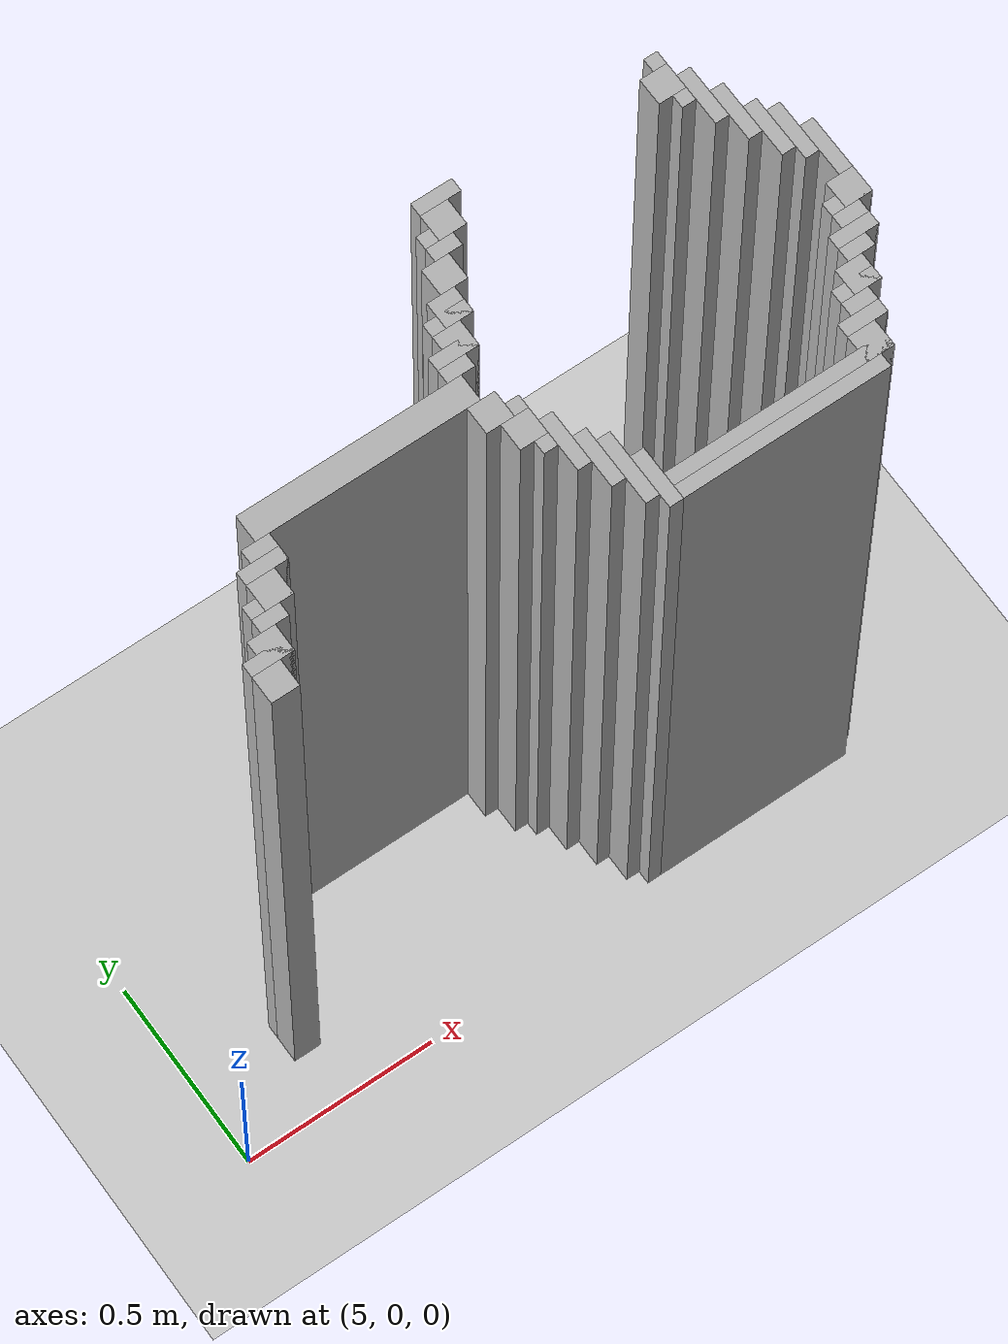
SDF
<sdf version="1.6">
 <world name="slam_world">
  <model name="ground_plane">
   <static>true</static>
   <link name="link">
    <collision name="collision">
     <geometry><plane><normal>0 0 1</normal><size>100 100</size></plane></geometry>
    </collision>
    <visual name="visual">
     <geometry><plane><normal>0 0 1</normal><size>100 100</size></plane></geometry>
     <material>
      <ambient>0.8 0.8 0.8 1</ambient>
      <diffuse>0.8 0.8 0.8 1</diffuse>
      <specular>0.8 0.8 0.8 1</specular>
     </material>
    </visual>
   </link>
  </model>
  <model name="wall_5440">
   <static>true</static>
   <pose>6.142691415313225 0.8874709976798143 1.0 0 0 0</pose>
   <link name="link">
    <collision name="collision">
     <geometry><box><size>0.10440835266821345 0.03480278422273782 2.0</size></box></geometry>
    </collision>
    <visual name="visual">
     <geometry><box><size>0.10440835266821345 0.03480278422273782 2.0</size></box></geometry>
     <material><ambient>0.5 0.5 0.5 1</ambient><diffuse>0.7 0.7 0.7 1</diffuse></material>
    </visual>
   </link>
  </model>
  <model name="wall_5441">
   <static>true</static>
   <pose>6.69953596287703 0.8352668213457076 1.0 0 0 0</pose>
   <link name="link">
    <collision name="collision">
     <geometry><box><size>0.03480278422273782 0.13921113689095127 2.0</size></box></geometry>
    </collision>
    <visual name="visual">
     <geometry><box><size>0.03480278422273782 0.13921113689095127 2.0</size></box></geometry>
     <material><ambient>0.5 0.5 0.5 1</ambient><diffuse>0.7 0.7 0.7 1</diffuse></material>
    </visual>
   </link>
  </model>
  <model name="wall_5450">
   <static>true</static>
   <pose>6.125290023201856 0.8352668213457076 1.0 0 0 0</pose>
   <link name="link">
    <collision name="collision">
     <geometry><box><size>0.06960556844547564 0.06960556844547564 2.0</size></box></geometry>
    </collision>
    <visual name="visual">
     <geometry><box><size>0.06960556844547564 0.06960556844547564 2.0</size></box></geometry>
     <material><ambient>0.5 0.5 0.5 1</ambient><diffuse>0.7 0.7 0.7 1</diffuse></material>
    </visual>
   </link>
  </model>
  <model name="wall_5451">
   <static>true</static>
   <pose>6.682134570765661 0.8352668213457076 1.0 0 0 0</pose>
   <link name="link">
    <collision name="collision">
     <geometry><box><size>0.06960556844547564 0.06960556844547564 2.0</size></box></geometry>
    </collision>
    <visual name="visual">
     <geometry><box><size>0.06960556844547564 0.06960556844547564 2.0</size></box></geometry>
     <material><ambient>0.5 0.5 0.5 1</ambient><diffuse>0.7 0.7 0.7 1</diffuse></material>
    </visual>
   </link>
  </model>
  <model name="wall_5460">
   <static>true</static>
   <pose>6.107888631090487 0.8178654292343387 1.0 0 0 0</pose>
   <link name="link">
    <collision name="collision">
     <geometry><box><size>0.10440835266821345 0.03480278422273782 2.0</size></box></geometry>
    </collision>
    <visual name="visual">
     <geometry><box><size>0.10440835266821345 0.03480278422273782 2.0</size></box></geometry>
     <material><ambient>0.5 0.5 0.5 1</ambient><diffuse>0.7 0.7 0.7 1</diffuse></material>
    </visual>
   </link>
  </model>
  <model name="wall_5461">
   <static>true</static>
   <pose>6.734338747099768 0.765661252900232 1.0 0 0 0</pose>
   <link name="link">
    <collision name="collision">
     <geometry><box><size>0.03480278422273782 0.13921113689095127 2.0</size></box></geometry>
    </collision>
    <visual name="visual">
     <geometry><box><size>0.03480278422273782 0.13921113689095127 2.0</size></box></geometry>
     <material><ambient>0.5 0.5 0.5 1</ambient><diffuse>0.7 0.7 0.7 1</diffuse></material>
    </visual>
   </link>
  </model>
  <model name="wall_5469">
   <static>true</static>
   <pose>6.090487238979118 0.7830626450116009 1.0 0 0 0</pose>
   <link name="link">
    <collision name="collision">
     <geometry><box><size>0.06960556844547564 0.03480278422273782 2.0</size></box></geometry>
    </collision>
    <visual name="visual">
     <geometry><box><size>0.06960556844547564 0.03480278422273782 2.0</size></box></geometry>
     <material><ambient>0.5 0.5 0.5 1</ambient><diffuse>0.7 0.7 0.7 1</diffuse></material>
    </visual>
   </link>
  </model>
  <model name="wall_5476">
   <static>true</static>
   <pose>6.05568445475638 0.7308584686774942 1.0 0 0 0</pose>
   <link name="link">
    <collision name="collision">
     <geometry><box><size>0.06960556844547564 0.06960556844547564 2.0</size></box></geometry>
    </collision>
    <visual name="visual">
     <geometry><box><size>0.06960556844547564 0.06960556844547564 2.0</size></box></geometry>
     <material><ambient>0.5 0.5 0.5 1</ambient><diffuse>0.7 0.7 0.7 1</diffuse></material>
    </visual>
   </link>
  </model>
  <model name="wall_5477">
   <static>true</static>
   <pose>6.769141531322505 0.6960556844547563 1.0 0 0 0</pose>
   <link name="link">
    <collision name="collision">
     <geometry><box><size>0.03480278422273782 0.13921113689095127 2.0</size></box></geometry>
    </collision>
    <visual name="visual">
     <geometry><box><size>0.03480278422273782 0.13921113689095127 2.0</size></box></geometry>
     <material><ambient>0.5 0.5 0.5 1</ambient><diffuse>0.7 0.7 0.7 1</diffuse></material>
    </visual>
   </link>
  </model>
  <model name="wall_5486">
   <static>true</static>
   <pose>6.020881670533642 0.6612529002320185 1.0 0 0 0</pose>
   <link name="link">
    <collision name="collision">
     <geometry><box><size>0.06960556844547564 0.06960556844547564 2.0</size></box></geometry>
    </collision>
    <visual name="visual">
     <geometry><box><size>0.06960556844547564 0.06960556844547564 2.0</size></box></geometry>
     <material><ambient>0.5 0.5 0.5 1</ambient><diffuse>0.7 0.7 0.7 1</diffuse></material>
    </visual>
   </link>
  </model>
  <model name="wall_5487">
   <static>true</static>
   <pose>6.803944315545244 0.6264501160092807 1.0 0 0 0</pose>
   <link name="link">
    <collision name="collision">
     <geometry><box><size>0.03480278422273782 0.13921113689095127 2.0</size></box></geometry>
    </collision>
    <visual name="visual">
     <geometry><box><size>0.03480278422273782 0.13921113689095127 2.0</size></box></geometry>
     <material><ambient>0.5 0.5 0.5 1</ambient><diffuse>0.7 0.7 0.7 1</diffuse></material>
    </visual>
   </link>
  </model>
  <model name="wall_5496">
   <static>true</static>
   <pose>6.003480278422273 0.6438515081206496 1.0 0 0 0</pose>
   <link name="link">
    <collision name="collision">
     <geometry><box><size>0.10440835266821345 0.03480278422273782 2.0</size></box></geometry>
    </collision>
    <visual name="visual">
     <geometry><box><size>0.10440835266821345 0.03480278422273782 2.0</size></box></geometry>
     <material><ambient>0.5 0.5 0.5 1</ambient><diffuse>0.7 0.7 0.7 1</diffuse></material>
    </visual>
   </link>
  </model>
  <model name="wall_5497">
   <static>true</static>
   <pose>6.838747099767981 0.5916473317865429 1.0 0 0 0</pose>
   <link name="link">
    <collision name="collision">
     <geometry><box><size>0.03480278422273782 0.13921113689095127 2.0</size></box></geometry>
    </collision>
    <visual name="visual">
     <geometry><box><size>0.03480278422273782 0.13921113689095127 2.0</size></box></geometry>
     <material><ambient>0.5 0.5 0.5 1</ambient><diffuse>0.7 0.7 0.7 1</diffuse></material>
    </visual>
   </link>
  </model>
  <model name="wall_5505">
   <static>true</static>
   <pose>5.986078886310905 0.5916473317865429 1.0 0 0 0</pose>
   <link name="link">
    <collision name="collision">
     <geometry><box><size>0.06960556844547564 0.06960556844547564 2.0</size></box></geometry>
    </collision>
    <visual name="visual">
     <geometry><box><size>0.06960556844547564 0.06960556844547564 2.0</size></box></geometry>
     <material><ambient>0.5 0.5 0.5 1</ambient><diffuse>0.7 0.7 0.7 1</diffuse></material>
    </visual>
   </link>
  </model>
  <model name="wall_5512">
   <static>true</static>
   <pose>5.968677494199536 0.574245939675174 1.0 0 0 0</pose>
   <link name="link">
    <collision name="collision">
     <geometry><box><size>0.10440835266821345 0.03480278422273782 2.0</size></box></geometry>
    </collision>
    <visual name="visual">
     <geometry><box><size>0.10440835266821345 0.03480278422273782 2.0</size></box></geometry>
     <material><ambient>0.5 0.5 0.5 1</ambient><diffuse>0.7 0.7 0.7 1</diffuse></material>
    </visual>
   </link>
  </model>
  <model name="wall_5513">
   <static>true</static>
   <pose>6.8735498839907185 0.4872389791183295 1.0 0 0 0</pose>
   <link name="link">
    <collision name="collision">
     <geometry><box><size>0.03480278422273782 0.2088167053364269 2.0</size></box></geometry>
    </collision>
    <visual name="visual">
     <geometry><box><size>0.03480278422273782 0.2088167053364269 2.0</size></box></geometry>
     <material><ambient>0.5 0.5 0.5 1</ambient><diffuse>0.7 0.7 0.7 1</diffuse></material>
    </visual>
   </link>
  </model>
  <model name="wall_5521">
   <static>true</static>
   <pose>5.951276102088166 0.5394431554524362 1.0 0 0 0</pose>
   <link name="link">
    <collision name="collision">
     <geometry><box><size>0.06960556844547564 0.03480278422273782 2.0</size></box></geometry>
    </collision>
    <visual name="visual">
     <geometry><box><size>0.06960556844547564 0.03480278422273782 2.0</size></box></geometry>
     <material><ambient>0.5 0.5 0.5 1</ambient><diffuse>0.7 0.7 0.7 1</diffuse></material>
    </visual>
   </link>
  </model>
  <model name="wall_5529">
   <static>true</static>
   <pose>5.672853828306264 0.4872389791183295 1.0 0 0 0</pose>
   <link name="link">
    <collision name="collision">
     <geometry><box><size>0.5568445475638051 0.06960556844547564 2.0</size></box></geometry>
    </collision>
    <visual name="visual">
     <geometry><box><size>0.5568445475638051 0.06960556844547564 2.0</size></box></geometry>
     <material><ambient>0.5 0.5 0.5 1</ambient><diffuse>0.7 0.7 0.7 1</diffuse></material>
    </visual>
   </link>
  </model>
  <model name="wall_5543">
   <static>true</static>
   <pose>5.3944315545243615 0.4176334106728538 1.0 0 0 0</pose>
   <link name="link">
    <collision name="collision">
     <geometry><box><size>0.06960556844547564 0.06960556844547564 2.0</size></box></geometry>
    </collision>
    <visual name="visual">
     <geometry><box><size>0.06960556844547564 0.06960556844547564 2.0</size></box></geometry>
     <material><ambient>0.5 0.5 0.5 1</ambient><diffuse>0.7 0.7 0.7 1</diffuse></material>
    </visual>
   </link>
  </model>
  <model name="wall_5544">
   <static>true</static>
   <pose>5.951276102088166 0.4176334106728538 1.0 0 0 0</pose>
   <link name="link">
    <collision name="collision">
     <geometry><box><size>0.06960556844547564 0.06960556844547564 2.0</size></box></geometry>
    </collision>
    <visual name="visual">
     <geometry><box><size>0.06960556844547564 0.06960556844547564 2.0</size></box></geometry>
     <material><ambient>0.5 0.5 0.5 1</ambient><diffuse>0.7 0.7 0.7 1</diffuse></material>
    </visual>
   </link>
  </model>
  <model name="wall_5545">
   <static>true</static>
   <pose>6.85614849187935 0.4176334106728538 1.0 0 0 0</pose>
   <link name="link">
    <collision name="collision">
     <geometry><box><size>0.06960556844547564 0.06960556844547564 2.0</size></box></geometry>
    </collision>
    <visual name="visual">
     <geometry><box><size>0.06960556844547564 0.06960556844547564 2.0</size></box></geometry>
     <material><ambient>0.5 0.5 0.5 1</ambient><diffuse>0.7 0.7 0.7 1</diffuse></material>
    </visual>
   </link>
  </model>
  <model name="wall_5563">
   <static>true</static>
   <pose>5.377030162412993 0.4002320185614849 1.0 0 0 0</pose>
   <link name="link">
    <collision name="collision">
     <geometry><box><size>0.10440835266821345 0.03480278422273782 2.0</size></box></geometry>
    </collision>
    <visual name="visual">
     <geometry><box><size>0.10440835266821345 0.03480278422273782 2.0</size></box></geometry>
     <material><ambient>0.5 0.5 0.5 1</ambient><diffuse>0.7 0.7 0.7 1</diffuse></material>
    </visual>
   </link>
  </model>
  <model name="wall_5564">
   <static>true</static>
   <pose>6.003480278422273 0.34802784222737815 1.0 0 0 0</pose>
   <link name="link">
    <collision name="collision">
     <geometry><box><size>0.03480278422273782 0.13921113689095127 2.0</size></box></geometry>
    </collision>
    <visual name="visual">
     <geometry><box><size>0.03480278422273782 0.13921113689095127 2.0</size></box></geometry>
     <material><ambient>0.5 0.5 0.5 1</ambient><diffuse>0.7 0.7 0.7 1</diffuse></material>
    </visual>
   </link>
  </model>
  <model name="wall_5565">
   <static>true</static>
   <pose>6.838747099767981 0.4002320185614849 1.0 0 0 0</pose>
   <link name="link">
    <collision name="collision">
     <geometry><box><size>0.10440835266821345 0.03480278422273782 2.0</size></box></geometry>
    </collision>
    <visual name="visual">
     <geometry><box><size>0.10440835266821345 0.03480278422273782 2.0</size></box></geometry>
     <material><ambient>0.5 0.5 0.5 1</ambient><diffuse>0.7 0.7 0.7 1</diffuse></material>
    </visual>
   </link>
  </model>
  <model name="wall_5583">
   <static>true</static>
   <pose>5.359628770301624 0.34802784222737815 1.0 0 0 0</pose>
   <link name="link">
    <collision name="collision">
     <geometry><box><size>0.06960556844547564 0.06960556844547564 2.0</size></box></geometry>
    </collision>
    <visual name="visual">
     <geometry><box><size>0.06960556844547564 0.06960556844547564 2.0</size></box></geometry>
     <material><ambient>0.5 0.5 0.5 1</ambient><diffuse>0.7 0.7 0.7 1</diffuse></material>
    </visual>
   </link>
  </model>
  <model name="wall_5584">
   <static>true</static>
   <pose>5.986078886310905 0.34802784222737815 1.0 0 0 0</pose>
   <link name="link">
    <collision name="collision">
     <geometry><box><size>0.06960556844547564 0.06960556844547564 2.0</size></box></geometry>
    </collision>
    <visual name="visual">
     <geometry><box><size>0.06960556844547564 0.06960556844547564 2.0</size></box></geometry>
     <material><ambient>0.5 0.5 0.5 1</ambient><diffuse>0.7 0.7 0.7 1</diffuse></material>
    </visual>
   </link>
  </model>
  <model name="wall_5585">
   <static>true</static>
   <pose>6.821345707656612 0.34802784222737815 1.0 0 0 0</pose>
   <link name="link">
    <collision name="collision">
     <geometry><box><size>0.06960556844547564 0.06960556844547564 2.0</size></box></geometry>
    </collision>
    <visual name="visual">
     <geometry><box><size>0.06960556844547564 0.06960556844547564 2.0</size></box></geometry>
     <material><ambient>0.5 0.5 0.5 1</ambient><diffuse>0.7 0.7 0.7 1</diffuse></material>
    </visual>
   </link>
  </model>
  <model name="wall_5603">
   <static>true</static>
   <pose>5.342227378190255 0.3306264501160093 1.0 0 0 0</pose>
   <link name="link">
    <collision name="collision">
     <geometry><box><size>0.10440835266821345 0.03480278422273782 2.0</size></box></geometry>
    </collision>
    <visual name="visual">
     <geometry><box><size>0.10440835266821345 0.03480278422273782 2.0</size></box></geometry>
     <material><ambient>0.5 0.5 0.5 1</ambient><diffuse>0.7 0.7 0.7 1</diffuse></material>
    </visual>
   </link>
  </model>
  <model name="wall_5604">
   <static>true</static>
   <pose>6.038283062645012 0.27842227378190254 1.0 0 0 0</pose>
   <link name="link">
    <collision name="collision">
     <geometry><box><size>0.03480278422273782 0.13921113689095127 2.0</size></box></geometry>
    </collision>
    <visual name="visual">
     <geometry><box><size>0.03480278422273782 0.13921113689095127 2.0</size></box></geometry>
     <material><ambient>0.5 0.5 0.5 1</ambient><diffuse>0.7 0.7 0.7 1</diffuse></material>
    </visual>
   </link>
  </model>
  <model name="wall_5605">
   <static>true</static>
   <pose>6.803944315545244 0.3306264501160093 1.0 0 0 0</pose>
   <link name="link">
    <collision name="collision">
     <geometry><box><size>0.10440835266821345 0.03480278422273782 2.0</size></box></geometry>
    </collision>
    <visual name="visual">
     <geometry><box><size>0.10440835266821345 0.03480278422273782 2.0</size></box></geometry>
     <material><ambient>0.5 0.5 0.5 1</ambient><diffuse>0.7 0.7 0.7 1</diffuse></material>
    </visual>
   </link>
  </model>
  <model name="wall_5619">
   <static>true</static>
   <pose>5.324825986078886 0.29582366589327147 1.0 0 0 0</pose>
   <link name="link">
    <collision name="collision">
     <geometry><box><size>0.06960556844547564 0.03480278422273782 2.0</size></box></geometry>
    </collision>
    <visual name="visual">
     <geometry><box><size>0.06960556844547564 0.03480278422273782 2.0</size></box></geometry>
     <material><ambient>0.5 0.5 0.5 1</ambient><diffuse>0.7 0.7 0.7 1</diffuse></material>
    </visual>
   </link>
  </model>
  <model name="wall_5620">
   <static>true</static>
   <pose>6.786542923433874 0.29582366589327147 1.0 0 0 0</pose>
   <link name="link">
    <collision name="collision">
     <geometry><box><size>0.06960556844547564 0.03480278422273782 2.0</size></box></geometry>
    </collision>
    <visual name="visual">
     <geometry><box><size>0.06960556844547564 0.03480278422273782 2.0</size></box></geometry>
     <material><ambient>0.5 0.5 0.5 1</ambient><diffuse>0.7 0.7 0.7 1</diffuse></material>
    </visual>
   </link>
  </model>
  <model name="wall_5633">
   <static>true</static>
   <pose>5.290023201856148 0.24361948955916474 1.0 0 0 0</pose>
   <link name="link">
    <collision name="collision">
     <geometry><box><size>0.06960556844547564 0.06960556844547564 2.0</size></box></geometry>
    </collision>
    <visual name="visual">
     <geometry><box><size>0.06960556844547564 0.06960556844547564 2.0</size></box></geometry>
     <material><ambient>0.5 0.5 0.5 1</ambient><diffuse>0.7 0.7 0.7 1</diffuse></material>
    </visual>
   </link>
  </model>
  <model name="wall_5634">
   <static>true</static>
   <pose>6.073085846867749 0.2088167053364269 1.0 0 0 0</pose>
   <link name="link">
    <collision name="collision">
     <geometry><box><size>0.03480278422273782 0.13921113689095127 2.0</size></box></geometry>
    </collision>
    <visual name="visual">
     <geometry><box><size>0.03480278422273782 0.13921113689095127 2.0</size></box></geometry>
     <material><ambient>0.5 0.5 0.5 1</ambient><diffuse>0.7 0.7 0.7 1</diffuse></material>
    </visual>
   </link>
  </model>
  <model name="wall_5635">
   <static>true</static>
   <pose>6.751740139211137 0.24361948955916474 1.0 0 0 0</pose>
   <link name="link">
    <collision name="collision">
     <geometry><box><size>0.06960556844547564 0.06960556844547564 2.0</size></box></geometry>
    </collision>
    <visual name="visual">
     <geometry><box><size>0.06960556844547564 0.06960556844547564 2.0</size></box></geometry>
     <material><ambient>0.5 0.5 0.5 1</ambient><diffuse>0.7 0.7 0.7 1</diffuse></material>
    </visual>
   </link>
  </model>
  <model name="wall_5653">
   <static>true</static>
   <pose>5.27262180974478 0.2262180974477958 1.0 0 0 0</pose>
   <link name="link">
    <collision name="collision">
     <geometry><box><size>0.10440835266821345 0.03480278422273782 2.0</size></box></geometry>
    </collision>
    <visual name="visual">
     <geometry><box><size>0.10440835266821345 0.03480278422273782 2.0</size></box></geometry>
     <material><ambient>0.5 0.5 0.5 1</ambient><diffuse>0.7 0.7 0.7 1</diffuse></material>
    </visual>
   </link>
  </model>
  <model name="wall_5654">
   <static>true</static>
   <pose>6.107888631090487 0.15661252900232017 1.0 0 0 0</pose>
   <link name="link">
    <collision name="collision">
     <geometry><box><size>0.03480278422273782 0.17401392111368907 2.0</size></box></geometry>
    </collision>
    <visual name="visual">
     <geometry><box><size>0.03480278422273782 0.17401392111368907 2.0</size></box></geometry>
     <material><ambient>0.5 0.5 0.5 1</ambient><diffuse>0.7 0.7 0.7 1</diffuse></material>
    </visual>
   </link>
  </model>
  <model name="wall_5655">
   <static>true</static>
   <pose>6.734338747099768 0.2262180974477958 1.0 0 0 0</pose>
   <link name="link">
    <collision name="collision">
     <geometry><box><size>0.10440835266821345 0.03480278422273782 2.0</size></box></geometry>
    </collision>
    <visual name="visual">
     <geometry><box><size>0.10440835266821345 0.03480278422273782 2.0</size></box></geometry>
     <material><ambient>0.5 0.5 0.5 1</ambient><diffuse>0.7 0.7 0.7 1</diffuse></material>
    </visual>
   </link>
  </model>
  <model name="wall_5669">
   <static>true</static>
   <pose>5.25522041763341 0.17401392111368907 1.0 0 0 0</pose>
   <link name="link">
    <collision name="collision">
     <geometry><box><size>0.06960556844547564 0.06960556844547564 2.0</size></box></geometry>
    </collision>
    <visual name="visual">
     <geometry><box><size>0.06960556844547564 0.06960556844547564 2.0</size></box></geometry>
     <material><ambient>0.5 0.5 0.5 1</ambient><diffuse>0.7 0.7 0.7 1</diffuse></material>
    </visual>
   </link>
  </model>
  <model name="wall_5670">
   <static>true</static>
   <pose>6.716937354988398 0.17401392111368907 1.0 0 0 0</pose>
   <link name="link">
    <collision name="collision">
     <geometry><box><size>0.06960556844547564 0.06960556844547564 2.0</size></box></geometry>
    </collision>
    <visual name="visual">
     <geometry><box><size>0.06960556844547564 0.06960556844547564 2.0</size></box></geometry>
     <material><ambient>0.5 0.5 0.5 1</ambient><diffuse>0.7 0.7 0.7 1</diffuse></material>
    </visual>
   </link>
  </model>
  <model name="wall_5684">
   <static>true</static>
   <pose>6.142691415313225 0.10440835266821345 1.0 0 0 0</pose>
   <link name="link">
    <collision name="collision">
     <geometry><box><size>0.03480278422273782 0.13921113689095127 2.0</size></box></geometry>
    </collision>
    <visual name="visual">
     <geometry><box><size>0.03480278422273782 0.13921113689095127 2.0</size></box></geometry>
     <material><ambient>0.5 0.5 0.5 1</ambient><diffuse>0.7 0.7 0.7 1</diffuse></material>
    </visual>
   </link>
  </model>
  <model name="wall_5685">
   <static>true</static>
   <pose>6.69953596287703 0.15661252900232017 1.0 0 0 0</pose>
   <link name="link">
    <collision name="collision">
     <geometry><box><size>0.10440835266821345 0.03480278422273782 2.0</size></box></geometry>
    </collision>
    <visual name="visual">
     <geometry><box><size>0.10440835266821345 0.03480278422273782 2.0</size></box></geometry>
     <material><ambient>0.5 0.5 0.5 1</ambient><diffuse>0.7 0.7 0.7 1</diffuse></material>
    </visual>
   </link>
  </model>
  <model name="wall_5700">
   <static>true</static>
   <pose>6.682134570765661 0.10440835266821345 1.0 0 0 0</pose>
   <link name="link">
    <collision name="collision">
     <geometry><box><size>0.06960556844547564 0.06960556844547564 2.0</size></box></geometry>
    </collision>
    <visual name="visual">
     <geometry><box><size>0.06960556844547564 0.06960556844547564 2.0</size></box></geometry>
     <material><ambient>0.5 0.5 0.5 1</ambient><diffuse>0.7 0.7 0.7 1</diffuse></material>
    </visual>
   </link>
  </model>
  <model name="wall_5710">
   <static>true</static>
   <pose>6.438515081206496 0.08700696055684454 1.0 0 0 0</pose>
   <link name="link">
    <collision name="collision">
     <geometry><box><size>0.5568445475638051 0.03480278422273782 2.0</size></box></geometry>
    </collision>
    <visual name="visual">
     <geometry><box><size>0.5568445475638051 0.03480278422273782 2.0</size></box></geometry>
     <material><ambient>0.5 0.5 0.5 1</ambient><diffuse>0.7 0.7 0.7 1</diffuse></material>
    </visual>
   </link>
  </model>
  <model name="wall_5721">
   <static>true</static>
   <pose>6.421113689095128 0.052204176334106726 1.0 0 0 0</pose>
   <link name="link">
    <collision name="collision">
     <geometry><box><size>0.5220417633410672 0.03480278422273782 2.0</size></box></geometry>
    </collision>
    <visual name="visual">
     <geometry><box><size>0.5220417633410672 0.03480278422273782 2.0</size></box></geometry>
     <material><ambient>0.5 0.5 0.5 1</ambient><diffuse>0.7 0.7 0.7 1</diffuse></material>
    </visual>
   </link>
  </model>
 </world>
</sdf>
